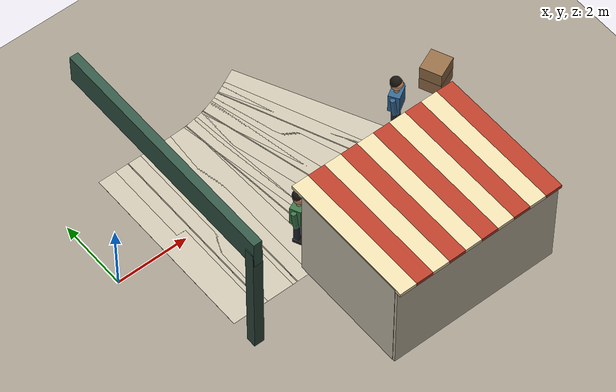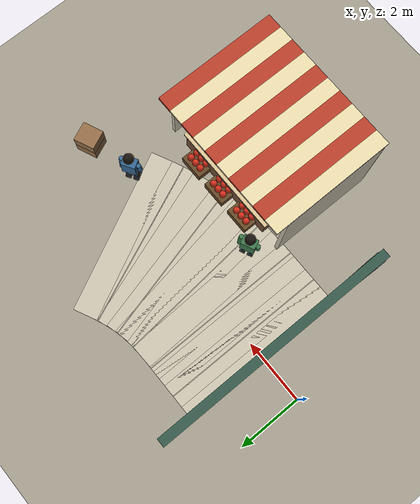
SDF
<sdf version="1.10">
 <world name="swan_town">
  <model name="ground_plane">
   <pose>-14 30 -0.025 0 0 0</pose>
   <static>true</static>
   <link name="link">
    <collision name="collision">
     <geometry><plane><normal>0 0 1</normal><size>100 100</size></plane></geometry>
    </collision>
    <visual name="visual">
     <geometry><plane><normal>0 0 1</normal><size>100 100</size></plane></geometry>
     <material><ambient>0.3 0.5 0.2 1</ambient><diffuse>0.3 0.5 0.2 1</diffuse></material>
    </visual>
   </link>
  </model>
  <model name="ground">
   <static>true</static>
   <pose>15 0 -0.1 0 0 0</pose>
   <link name="body">
    <collision name="box_collision"><geometry><box><size>46 24 0.2</size></box></geometry></collision>
    <visual name="box_visual">
     <geometry><box><size>46 24 0.2</size></box></geometry>
     <material><ambient>0.64 0.61 0.55 1</ambient><diffuse>0.64 0.61 0.55 1</diffuse></material>
    </visual>
   </link>
  </model>
  <model name="market_paving_7">
   <static>true</static>
   <pose>1.75 0 0.002 0 0 0</pose>
   <link name="body">
    <visual name="box_visual">
     <geometry><box><size>0.75 5.2 0.004</size></box></geometry>
     <material><ambient>0.79 0.76 0.68 1</ambient><diffuse>0.79 0.76 0.68 1</diffuse></material>
    </visual>
   </link>
  </model>
  <model name="market_paving_8">
   <static>true</static>
   <pose>2.25 0 0.002 0 0 0</pose>
   <link name="body">
    <visual name="box_visual">
     <geometry><box><size>0.75 5.2 0.004</size></box></geometry>
     <material><ambient>0.79 0.76 0.68 1</ambient><diffuse>0.79 0.76 0.68 1</diffuse></material>
    </visual>
   </link>
  </model>
  <model name="paving_joint_8">
   <static>true</static>
   <pose>2.25 0 0.0045 0 0 0</pose>
   <link name="body">
    <visual name="box_visual">
     <geometry><box><size>0.025 5.2 0.001</size></box></geometry>
     <material><ambient>0.67 0.64 0.57 1</ambient><diffuse>0.67 0.64 0.57 1</diffuse></material>
    </visual>
   </link>
  </model>
  <model name="market_paving_9">
   <static>true</static>
   <pose>2.75 0 0.002 0 0 0</pose>
   <link name="body">
    <visual name="box_visual">
     <geometry><box><size>0.75 5.2 0.004</size></box></geometry>
     <material><ambient>0.79 0.76 0.68 1</ambient><diffuse>0.79 0.76 0.68 1</diffuse></material>
    </visual>
   </link>
  </model>
  <model name="market_paving_10">
   <static>true</static>
   <pose>3.25 0.00031537 0.002 0 0 0.003781</pose>
   <link name="body">
    <visual name="box_visual">
     <geometry><box><size>0.75 5.2 0.004</size></box></geometry>
     <material><ambient>0.79 0.76 0.68 1</ambient><diffuse>0.79 0.76 0.68 1</diffuse></material>
    </visual>
   </link>
  </model>
  <model name="paving_joint_10">
   <static>true</static>
   <pose>3.25 0.00031537 0.0045 0 0 0.003781</pose>
   <link name="body">
    <visual name="box_visual">
     <geometry><box><size>0.025 5.2 0.001</size></box></geometry>
     <material><ambient>0.67 0.64 0.57 1</ambient><diffuse>0.67 0.64 0.57 1</diffuse></material>
    </visual>
   </link>
  </model>
  <model name="market_paving_11">
   <static>true</static>
   <pose>3.75 0.0084221 0.002 0 0 0.033398</pose>
   <link name="body">
    <visual name="box_visual">
     <geometry><box><size>0.75 5.2 0.004</size></box></geometry>
     <material><ambient>0.79 0.76 0.68 1</ambient><diffuse>0.79 0.76 0.68 1</diffuse></material>
    </visual>
   </link>
  </model>
  <model name="market_paving_12">
   <static>true</static>
   <pose>4.25 0.038143 0.002 0 0 0.089204</pose>
   <link name="body">
    <visual name="box_visual">
     <geometry><box><size>0.75 5.2 0.004</size></box></geometry>
     <material><ambient>0.79 0.76 0.68 1</ambient><diffuse>0.79 0.76 0.68 1</diffuse></material>
    </visual>
   </link>
  </model>
  <model name="paving_joint_12">
   <static>true</static>
   <pose>4.25 0.038143 0.0045 0 0 0.089204</pose>
   <link name="body">
    <visual name="box_visual">
     <geometry><box><size>0.025 5.2 0.001</size></box></geometry>
     <material><ambient>0.67 0.64 0.57 1</ambient><diffuse>0.67 0.64 0.57 1</diffuse></material>
    </visual>
   </link>
  </model>
  <model name="market_paving_13">
   <static>true</static>
   <pose>4.75 0.10125 0.002 0 0 0.16424</pose>
   <link name="body">
    <visual name="box_visual">
     <geometry><box><size>0.75 5.2 0.004</size></box></geometry>
     <material><ambient>0.79 0.76 0.68 1</ambient><diffuse>0.79 0.76 0.68 1</diffuse></material>
    </visual>
   </link>
  </model>
  <model name="market_paving_14">
   <static>true</static>
   <pose>5.25 0.20586 0.002 0 0 0.2486</pose>
   <link name="body">
    <visual name="box_visual">
     <geometry><box><size>0.75 5.2 0.004</size></box></geometry>
     <material><ambient>0.79 0.76 0.68 1</ambient><diffuse>0.79 0.76 0.68 1</diffuse></material>
    </visual>
   </link>
  </model>
  <model name="paving_joint_14">
   <static>true</static>
   <pose>5.25 0.20586 0.0045 0 0 0.2486</pose>
   <link name="body">
    <visual name="box_visual">
     <geometry><box><size>0.025 5.2 0.001</size></box></geometry>
     <material><ambient>0.67 0.64 0.57 1</ambient><diffuse>0.67 0.64 0.57 1</diffuse></material>
    </visual>
   </link>
  </model>
  <model name="market_paving_15">
   <static>true</static>
   <pose>5.75 0.35543 0.002 0 0 0.33122</pose>
   <link name="body">
    <visual name="box_visual">
     <geometry><box><size>0.75 5.2 0.004</size></box></geometry>
     <material><ambient>0.79 0.76 0.68 1</ambient><diffuse>0.79 0.76 0.68 1</diffuse></material>
    </visual>
   </link>
  </model>
  <model name="market_paving_16">
   <static>true</static>
   <pose>6.25 0.54833 0.002 0 0 0.40225</pose>
   <link name="body">
    <visual name="box_visual">
     <geometry><box><size>0.75 5.2 0.004</size></box></geometry>
     <material><ambient>0.79 0.76 0.68 1</ambient><diffuse>0.79 0.76 0.68 1</diffuse></material>
    </visual>
   </link>
  </model>
  <model name="paving_joint_16">
   <static>true</static>
   <pose>6.25 0.54833 0.0045 0 0 0.40225</pose>
   <link name="body">
    <visual name="box_visual">
     <geometry><box><size>0.025 5.2 0.001</size></box></geometry>
     <material><ambient>0.67 0.64 0.57 1</ambient><diffuse>0.67 0.64 0.57 1</diffuse></material>
    </visual>
   </link>
  </model>
  <model name="market_paving_17">
   <static>true</static>
   <pose>6.75 0.77782 0.002 0 0 0.45458</pose>
   <link name="body">
    <visual name="box_visual">
     <geometry><box><size>0.75 5.2 0.004</size></box></geometry>
     <material><ambient>0.79 0.76 0.68 1</ambient><diffuse>0.79 0.76 0.68 1</diffuse></material>
    </visual>
   </link>
  </model>
  <model name="entrance_post_-1">
   <static>true</static>
   <pose>1.5 -3.25 1.8 0 0 0</pose>
   <link name="body">
    <collision name="box_collision"><geometry><box><size>0.28 0.28 3.6</size></box></geometry></collision>
    <visual name="box_visual">
     <geometry><box><size>0.28 0.28 3.6</size></box></geometry>
     <material><ambient>0.2 0.29 0.25 1</ambient><diffuse>0.2 0.29 0.25 1</diffuse></material>
    </visual>
   </link>
  </model>
  <model name="entrance_header">
   <static>true</static>
   <pose>1.5 0 3.6 0 0 0</pose>
   <link name="body">
    <collision name="box_collision"><geometry><box><size>0.24 6.8 0.82</size></box></geometry></collision>
    <visual name="box_visual">
     <geometry><box><size>0.24 6.8 0.82</size></box></geometry>
     <material><ambient>0.2 0.34 0.28 1</ambient><diffuse>0.2 0.34 0.28 1</diffuse></material>
    </visual>
   </link>
  </model>
  <model name="stall_04">
   <static>true</static>
   <pose>6 -4.0032 0 0 0 0</pose>
   <link name="body">
    <collision name="rear_collision">
     <pose>0 -1.65 1.4 0 0 0</pose>
     <geometry><box><size>4.8 0.15 2.8</size></box></geometry>
    </collision>
    <visual name="rear_visual">
     <pose>0 -1.65 1.4 0 0 0</pose>
     <geometry><box><size>4.8 0.15 2.8</size></box></geometry>
     <material><ambient>0.78 0.74 0.65 1</ambient><diffuse>0.78 0.74 0.65 1</diffuse></material>
    </visual>
    <collision name="side_-2.35_collision">
     <pose>-2.35 0 1.4 0 0 0</pose>
     <geometry><box><size>0.12 3.3 2.8</size></box></geometry>
    </collision>
    <visual name="side_-2.35_visual">
     <pose>-2.35 0 1.4 0 0 0</pose>
     <geometry><box><size>0.12 3.3 2.8</size></box></geometry>
     <material><ambient>0.81 0.77 0.69 1</ambient><diffuse>0.81 0.77 0.69 1</diffuse></material>
    </visual>
    <collision name="side_2.35_collision">
     <pose>2.35 0 1.4 0 0 0</pose>
     <geometry><box><size>0.12 3.3 2.8</size></box></geometry>
    </collision>
    <visual name="side_2.35_visual">
     <pose>2.35 0 1.4 0 0 0</pose>
     <geometry><box><size>0.12 3.3 2.8</size></box></geometry>
     <material><ambient>0.81 0.77 0.69 1</ambient><diffuse>0.81 0.77 0.69 1</diffuse></material>
    </visual>
    <collision name="counter_collision">
     <pose>0 1.22 0.4 0 0 0</pose>
     <geometry><box><size>3.5 0.85 0.8</size></box></geometry>
    </collision>
    <visual name="counter_visual">
     <pose>0 1.22 0.4 0 0 0</pose>
     <geometry><box><size>3.5 0.85 0.8</size></box></geometry>
     <material><ambient>0.47 0.32 0.21 1</ambient><diffuse>0.47 0.32 0.21 1</diffuse></material>
    </visual>
    <collision name="counter_top_collision">
     <pose>0 1.22 0.83 0 0 0</pose>
     <geometry><box><size>3.6 0.95 0.06</size></box></geometry>
    </collision>
    <visual name="counter_top_visual">
     <pose>0 1.22 0.83 0 0 0</pose>
     <geometry><box><size>3.6 0.95 0.06</size></box></geometry>
     <material><ambient>0.86 0.77 0.59 1</ambient><diffuse>0.86 0.77 0.59 1</diffuse></material>
    </visual>
    <collision name="awning_0_collision">
     <pose>-2.16 0.1 2.78 0 0 0</pose>
     <geometry><box><size>0.48 3.85 0.1</size></box></geometry>
    </collision>
    <visual name="awning_0_visual">
     <pose>-2.16 0.1 2.78 0 0 0</pose>
     <geometry><box><size>0.48 3.85 0.1</size></box></geometry>
     <material><ambient>0.92 0.86 0.68 1</ambient><diffuse>0.92 0.86 0.68 1</diffuse></material>
    </visual>
    <collision name="awning_1_collision">
     <pose>-1.68 0.1 2.78 0 0 0</pose>
     <geometry><box><size>0.48 3.85 0.1</size></box></geometry>
    </collision>
    <visual name="awning_1_visual">
     <pose>-1.68 0.1 2.78 0 0 0</pose>
     <geometry><box><size>0.48 3.85 0.1</size></box></geometry>
     <material><ambient>0.72 0.24 0.16 1</ambient><diffuse>0.72 0.24 0.16 1</diffuse></material>
    </visual>
    <collision name="awning_2_collision">
     <pose>-1.2 0.1 2.78 0 0 0</pose>
     <geometry><box><size>0.48 3.85 0.1</size></box></geometry>
    </collision>
    <visual name="awning_2_visual">
     <pose>-1.2 0.1 2.78 0 0 0</pose>
     <geometry><box><size>0.48 3.85 0.1</size></box></geometry>
     <material><ambient>0.92 0.86 0.68 1</ambient><diffuse>0.92 0.86 0.68 1</diffuse></material>
    </visual>
    <collision name="awning_3_collision">
     <pose>-0.72 0.1 2.78 0 0 0</pose>
     <geometry><box><size>0.48 3.85 0.1</size></box></geometry>
    </collision>
    <visual name="awning_3_visual">
     <pose>-0.72 0.1 2.78 0 0 0</pose>
     <geometry><box><size>0.48 3.85 0.1</size></box></geometry>
     <material><ambient>0.72 0.24 0.16 1</ambient><diffuse>0.72 0.24 0.16 1</diffuse></material>
    </visual>
    <collision name="awning_4_collision">
     <pose>-0.24 0.1 2.78 0 0 0</pose>
     <geometry><box><size>0.48 3.85 0.1</size></box></geometry>
    </collision>
    <visual name="awning_4_visual">
     <pose>-0.24 0.1 2.78 0 0 0</pose>
     <geometry><box><size>0.48 3.85 0.1</size></box></geometry>
     <material><ambient>0.92 0.86 0.68 1</ambient><diffuse>0.92 0.86 0.68 1</diffuse></material>
    </visual>
    <collision name="awning_5_collision">
     <pose>0.24 0.1 2.78 0 0 0</pose>
     <geometry><box><size>0.48 3.85 0.1</size></box></geometry>
    </collision>
    <visual name="awning_5_visual">
     <pose>0.24 0.1 2.78 0 0 0</pose>
     <geometry><box><size>0.48 3.85 0.1</size></box></geometry>
     <material><ambient>0.72 0.24 0.16 1</ambient><diffuse>0.72 0.24 0.16 1</diffuse></material>
    </visual>
    <collision name="awning_6_collision">
     <pose>0.72 0.1 2.78 0 0 0</pose>
     <geometry><box><size>0.48 3.85 0.1</size></box></geometry>
    </collision>
    <visual name="awning_6_visual">
     <pose>0.72 0.1 2.78 0 0 0</pose>
     <geometry><box><size>0.48 3.85 0.1</size></box></geometry>
     <material><ambient>0.92 0.86 0.68 1</ambient><diffuse>0.92 0.86 0.68 1</diffuse></material>
    </visual>
    <collision name="awning_7_collision">
     <pose>1.2 0.1 2.78 0 0 0</pose>
     <geometry><box><size>0.48 3.85 0.1</size></box></geometry>
    </collision>
    <visual name="awning_7_visual">
     <pose>1.2 0.1 2.78 0 0 0</pose>
     <geometry><box><size>0.48 3.85 0.1</size></box></geometry>
     <material><ambient>0.72 0.24 0.16 1</ambient><diffuse>0.72 0.24 0.16 1</diffuse></material>
    </visual>
    <collision name="awning_8_collision">
     <pose>1.68 0.1 2.78 0 0 0</pose>
     <geometry><box><size>0.48 3.85 0.1</size></box></geometry>
    </collision>
    <visual name="awning_8_visual">
     <pose>1.68 0.1 2.78 0 0 0</pose>
     <geometry><box><size>0.48 3.85 0.1</size></box></geometry>
     <material><ambient>0.92 0.86 0.68 1</ambient><diffuse>0.92 0.86 0.68 1</diffuse></material>
    </visual>
    <collision name="awning_9_collision">
     <pose>2.16 0.1 2.78 0 0 0</pose>
     <geometry><box><size>0.48 3.85 0.1</size></box></geometry>
    </collision>
    <visual name="awning_9_visual">
     <pose>2.16 0.1 2.78 0 0 0</pose>
     <geometry><box><size>0.48 3.85 0.1</size></box></geometry>
     <material><ambient>0.72 0.24 0.16 1</ambient><diffuse>0.72 0.24 0.16 1</diffuse></material>
    </visual>
    <collision name="crate_-1_collision">
     <pose>-1.04 1.77 0.15 0 0 0</pose>
     <geometry><box><size>0.78 0.6 0.3</size></box></geometry>
    </collision>
    <visual name="crate_-1_visual">
     <pose>-1.04 1.77 0.15 0 0 0</pose>
     <geometry><box><size>0.78 0.6 0.3</size></box></geometry>
     <material><ambient>0.4 0.28 0.15 1</ambient><diffuse>0.4 0.28 0.15 1</diffuse></material>
    </visual>
    <visual name="produce_-1_0_visual">
     <pose>-1.25 1.66 0.39 0 0 0</pose>
     <geometry><sphere><radius>0.105</radius></sphere></geometry>
     <material><ambient>0.84 0.18 0.11 1</ambient><diffuse>0.84 0.18 0.11 1</diffuse></material>
    </visual>
    <visual name="produce_-1_1_visual">
     <pose>-1.04 1.66 0.39 0 0 0</pose>
     <geometry><sphere><radius>0.105</radius></sphere></geometry>
     <material><ambient>0.84 0.18 0.11 1</ambient><diffuse>0.84 0.18 0.11 1</diffuse></material>
    </visual>
    <visual name="produce_-1_2_visual">
     <pose>-0.83 1.66 0.39 0 0 0</pose>
     <geometry><sphere><radius>0.105</radius></sphere></geometry>
     <material><ambient>0.84 0.18 0.11 1</ambient><diffuse>0.84 0.18 0.11 1</diffuse></material>
    </visual>
    <visual name="produce_-1_3_visual">
     <pose>-1.25 1.88 0.39 0 0 0</pose>
     <geometry><sphere><radius>0.105</radius></sphere></geometry>
     <material><ambient>0.84 0.18 0.11 1</ambient><diffuse>0.84 0.18 0.11 1</diffuse></material>
    </visual>
    <visual name="produce_-1_4_visual">
     <pose>-1.04 1.88 0.39 0 0 0</pose>
     <geometry><sphere><radius>0.105</radius></sphere></geometry>
     <material><ambient>0.84 0.18 0.11 1</ambient><diffuse>0.84 0.18 0.11 1</diffuse></material>
    </visual>
    <visual name="produce_-1_5_visual">
     <pose>-0.83 1.88 0.39 0 0 0</pose>
     <geometry><sphere><radius>0.105</radius></sphere></geometry>
     <material><ambient>0.84 0.18 0.11 1</ambient><diffuse>0.84 0.18 0.11 1</diffuse></material>
    </visual>
    <collision name="crate_0_collision">
     <pose>0 1.77 0.15 0 0 0</pose>
     <geometry><box><size>0.78 0.6 0.3</size></box></geometry>
    </collision>
    <visual name="crate_0_visual">
     <pose>0 1.77 0.15 0 0 0</pose>
     <geometry><box><size>0.78 0.6 0.3</size></box></geometry>
     <material><ambient>0.4 0.28 0.15 1</ambient><diffuse>0.4 0.28 0.15 1</diffuse></material>
    </visual>
    <visual name="produce_0_0_visual">
     <pose>-0.21 1.66 0.39 0 0 0</pose>
     <geometry><sphere><radius>0.105</radius></sphere></geometry>
     <material><ambient>0.84 0.18 0.11 1</ambient><diffuse>0.84 0.18 0.11 1</diffuse></material>
    </visual>
    <visual name="produce_0_1_visual">
     <pose>0 1.66 0.39 0 0 0</pose>
     <geometry><sphere><radius>0.105</radius></sphere></geometry>
     <material><ambient>0.84 0.18 0.11 1</ambient><diffuse>0.84 0.18 0.11 1</diffuse></material>
    </visual>
    <visual name="produce_0_2_visual">
     <pose>0.21 1.66 0.39 0 0 0</pose>
     <geometry><sphere><radius>0.105</radius></sphere></geometry>
     <material><ambient>0.84 0.18 0.11 1</ambient><diffuse>0.84 0.18 0.11 1</diffuse></material>
    </visual>
    <visual name="produce_0_3_visual">
     <pose>-0.21 1.88 0.39 0 0 0</pose>
     <geometry><sphere><radius>0.105</radius></sphere></geometry>
     <material><ambient>0.84 0.18 0.11 1</ambient><diffuse>0.84 0.18 0.11 1</diffuse></material>
    </visual>
    <visual name="produce_0_4_visual">
     <pose>0 1.88 0.39 0 0 0</pose>
     <geometry><sphere><radius>0.105</radius></sphere></geometry>
     <material><ambient>0.84 0.18 0.11 1</ambient><diffuse>0.84 0.18 0.11 1</diffuse></material>
    </visual>
    <visual name="produce_0_5_visual">
     <pose>0.21 1.88 0.39 0 0 0</pose>
     <geometry><sphere><radius>0.105</radius></sphere></geometry>
     <material><ambient>0.84 0.18 0.11 1</ambient><diffuse>0.84 0.18 0.11 1</diffuse></material>
    </visual>
    <collision name="crate_1_collision">
     <pose>1.04 1.77 0.15 0 0 0</pose>
     <geometry><box><size>0.78 0.6 0.3</size></box></geometry>
    </collision>
    <visual name="crate_1_visual">
     <pose>1.04 1.77 0.15 0 0 0</pose>
     <geometry><box><size>0.78 0.6 0.3</size></box></geometry>
     <material><ambient>0.4 0.28 0.15 1</ambient><diffuse>0.4 0.28 0.15 1</diffuse></material>
    </visual>
    <visual name="produce_1_0_visual">
     <pose>0.83 1.66 0.39 0 0 0</pose>
     <geometry><sphere><radius>0.105</radius></sphere></geometry>
     <material><ambient>0.84 0.18 0.11 1</ambient><diffuse>0.84 0.18 0.11 1</diffuse></material>
    </visual>
    <visual name="produce_1_1_visual">
     <pose>1.04 1.66 0.39 0 0 0</pose>
     <geometry><sphere><radius>0.105</radius></sphere></geometry>
     <material><ambient>0.84 0.18 0.11 1</ambient><diffuse>0.84 0.18 0.11 1</diffuse></material>
    </visual>
    <visual name="produce_1_2_visual">
     <pose>1.25 1.66 0.39 0 0 0</pose>
     <geometry><sphere><radius>0.105</radius></sphere></geometry>
     <material><ambient>0.84 0.18 0.11 1</ambient><diffuse>0.84 0.18 0.11 1</diffuse></material>
    </visual>
    <visual name="produce_1_3_visual">
     <pose>0.83 1.88 0.39 0 0 0</pose>
     <geometry><sphere><radius>0.105</radius></sphere></geometry>
     <material><ambient>0.84 0.18 0.11 1</ambient><diffuse>0.84 0.18 0.11 1</diffuse></material>
    </visual>
    <visual name="produce_1_4_visual">
     <pose>1.04 1.88 0.39 0 0 0</pose>
     <geometry><sphere><radius>0.105</radius></sphere></geometry>
     <material><ambient>0.84 0.18 0.11 1</ambient><diffuse>0.84 0.18 0.11 1</diffuse></material>
    </visual>
    <visual name="produce_1_5_visual">
     <pose>1.25 1.88 0.39 0 0 0</pose>
     <geometry><sphere><radius>0.105</radius></sphere></geometry>
     <material><ambient>0.84 0.18 0.11 1</ambient><diffuse>0.84 0.18 0.11 1</diffuse></material>
    </visual>
   </link>
  </model>
  <model name="signboard_4">
   <static>true</static>
   <pose>6 -2.2432 2.24 0 0 0</pose>
   <link name="body">
    <collision name="box_collision"><geometry><box><size>3.65 0.08 0.72</size></box></geometry></collision>
    <visual name="box_visual">
     <geometry><box><size>3.65 0.08 0.72</size></box></geometry>
     <material><ambient>0.72 0.24 0.16 1</ambient><diffuse>0.72 0.24 0.16 1</diffuse></material>
    </visual>
   </link>
  </model>
  <model name="sign_shop_4">
   <static>true</static>
   <pose>6 -2.1952 2.24 0 0 -3.14158530718</pose>
   <link name="body">
    <visual name="top_visual">
     <pose>0 -0.003 0.32062 0 0 0</pose>
     <geometry><box><size>3.5136 0.003 0.0108</size></box></geometry>
     <material><ambient>1 0.961 0.875 1</ambient><diffuse>1 0.961 0.875 1</diffuse></material>
    </visual>
    <visual name="bottom_visual">
     <pose>0 -0.003 -0.32062 0 0 0</pose>
     <geometry><box><size>3.5136 0.003 0.0108</size></box></geometry>
     <material><ambient>1 0.961 0.875 1</ambient><diffuse>1 0.961 0.875 1</diffuse></material>
    </visual>
    <visual name="left_visual">
     <pose>-1.7568 -0.003 0 0 0 0</pose>
     <geometry><box><size>0.0108 0.003 0.64125</size></box></geometry>
     <material><ambient>1 0.961 0.875 1</ambient><diffuse>1 0.961 0.875 1</diffuse></material>
    </visual>
    <visual name="right_visual">
     <pose>1.7568 -0.003 0 0 0 0</pose>
     <geometry><box><size>0.0108 0.003 0.64125</size></box></geometry>
     <material><ambient>1 0.961 0.875 1</ambient><diffuse>1 0.961 0.875 1</diffuse></material>
    </visual>
    <visual name="ink_0_visual">
     <pose>0.028125 -0.003 0.15938 0 0 0</pose>
     <geometry><box><size>0.01875 0.003 0.01875</size></box></geometry>
     <material><ambient>1 0.961 0.875 1</ambient><diffuse>1 0.961 0.875 1</diffuse></material>
    </visual>
    <visual name="ink_1_visual">
     <pose>-0.09375 -0.003 0.15 0 0 0</pose>
     <geometry><box><size>0.075 0.003 0.0375</size></box></geometry>
     <material><ambient>1 0.961 0.875 1</ambient><diffuse>1 0.961 0.875 1</diffuse></material>
    </visual>
    <visual name="ink_2_visual">
     <pose>0.0375 -0.003 0.14062 0 0 0</pose>
     <geometry><box><size>0.0375 0.003 0.01875</size></box></geometry>
     <material><ambient>1 0.961 0.875 1</ambient><diffuse>1 0.961 0.875 1</diffuse></material>
    </visual>
    <visual name="ink_3_visual">
     <pose>0.225 -0.003 0.14062 0 0 0</pose>
     <geometry><box><size>0.075 0.003 0.01875</size></box></geometry>
     <material><ambient>1 0.961 0.875 1</ambient><diffuse>1 0.961 0.875 1</diffuse></material>
    </visual>
    <visual name="ink_4_visual">
     <pose>0.31875 -0.003 0.14062 0 0 0</pose>
     <geometry><box><size>0.075 0.003 0.01875</size></box></geometry>
     <material><ambient>1 0.961 0.875 1</ambient><diffuse>1 0.961 0.875 1</diffuse></material>
    </visual>
    <visual name="ink_5_visual">
     <pose>0.54375 -0.003 0.14062 0 0 0</pose>
     <geometry><box><size>0.15 0.003 0.01875</size></box></geometry>
     <material><ambient>1 0.961 0.875 1</ambient><diffuse>1 0.961 0.875 1</diffuse></material>
    </visual>
    <visual name="ink_6_visual">
     <pose>-0.58125 -0.003 0.13125 0 0 0</pose>
     <geometry><box><size>0.1875 0.003 0.0375</size></box></geometry>
     <material><ambient>1 0.961 0.875 1</ambient><diffuse>1 0.961 0.875 1</diffuse></material>
    </visual>
    <visual name="ink_7_visual">
     <pose>-0.30938 -0.003 0.13125 0 0 0</pose>
     <geometry><box><size>0.01875 0.003 0.0375</size></box></geometry>
     <material><ambient>1 0.961 0.875 1</ambient><diffuse>1 0.961 0.875 1</diffuse></material>
    </visual>
    <visual name="ink_8_visual">
     <pose>0.39375 -0.003 0.14062 0 0 0</pose>
     <geometry><box><size>0.0375 0.003 0.05625</size></box></geometry>
     <material><ambient>1 0.961 0.875 1</ambient><diffuse>1 0.961 0.875 1</diffuse></material>
    </visual>
    <visual name="ink_9_visual">
     <pose>-0.084375 -0.003 0.10313 0 0 0</pose>
     <geometry><box><size>0.16875 0.003 0.01875</size></box></geometry>
     <material><ambient>1 0.961 0.875 1</ambient><diffuse>1 0.961 0.875 1</diffuse></material>
    </visual>
    <visual name="ink_10_visual">
     <pose>0.028125 -0.003 0.1125 0 0 0</pose>
     <geometry><box><size>0.01875 0.003 0.0375</size></box></geometry>
     <material><ambient>1 0.961 0.875 1</ambient><diffuse>1 0.961 0.875 1</diffuse></material>
    </visual>
    <visual name="ink_11_visual">
     <pose>0.38438 -0.003 0.10313 0 0 0</pose>
     <geometry><box><size>0.05625 0.003 0.01875</size></box></geometry>
     <material><ambient>1 0.961 0.875 1</ambient><diffuse>1 0.961 0.875 1</diffuse></material>
    </visual>
    <visual name="ink_12_visual">
     <pose>0.53438 -0.003 0.1125 0 0 0</pose>
     <geometry><box><size>0.01875 0.003 0.0375</size></box></geometry>
     <material><ambient>1 0.961 0.875 1</ambient><diffuse>1 0.961 0.875 1</diffuse></material>
    </visual>
    <visual name="ink_13_visual">
     <pose>-0.30938 -0.003 0.09375 0 0 0</pose>
     <geometry><box><size>0.05625 0.003 0.0375</size></box></geometry>
     <material><ambient>1 0.961 0.875 1</ambient><diffuse>1 0.961 0.875 1</diffuse></material>
    </visual>
    <visual name="ink_14_visual">
     <pose>-0.084375 -0.003 0.084375 0 0 0</pose>
     <geometry><box><size>0.01875 0.003 0.01875</size></box></geometry>
     <material><ambient>1 0.961 0.875 1</ambient><diffuse>1 0.961 0.875 1</diffuse></material>
    </visual>
    <visual name="ink_15_visual">
     <pose>0.0375 -0.003 0.084375 0 0 0</pose>
     <geometry><box><size>0.0375 0.003 0.01875</size></box></geometry>
     <material><ambient>1 0.961 0.875 1</ambient><diffuse>1 0.961 0.875 1</diffuse></material>
    </visual>
    <visual name="ink_16_visual">
     <pose>0.375 -0.003 0.084375 0 0 0</pose>
     <geometry><box><size>0.075 0.003 0.01875</size></box></geometry>
     <material><ambient>1 0.961 0.875 1</ambient><diffuse>1 0.961 0.875 1</diffuse></material>
    </visual>
    <visual name="ink_17_visual">
     <pose>0.53438 -0.003 0.084375 0 0 0</pose>
     <geometry><box><size>0.05625 0.003 0.01875</size></box></geometry>
     <material><ambient>1 0.961 0.875 1</ambient><diffuse>1 0.961 0.875 1</diffuse></material>
    </visual>
    <visual name="ink_18_visual">
     <pose>-0.49687 -0.003 0.084375 0 0 0</pose>
     <geometry><box><size>0.01875 0.003 0.05625</size></box></geometry>
     <material><ambient>1 0.961 0.875 1</ambient><diffuse>1 0.961 0.875 1</diffuse></material>
    </visual>
    <visual name="ink_19_visual">
     <pose>-0.3375 -0.003 0.065625 0 0 0</pose>
     <geometry><box><size>0.0375 0.003 0.01875</size></box></geometry>
     <material><ambient>1 0.961 0.875 1</ambient><diffuse>1 0.961 0.875 1</diffuse></material>
    </visual>
    <visual name="ink_20_visual">
     <pose>-0.28125 -0.003 0.065625 0 0 0</pose>
     <geometry><box><size>0.0375 0.003 0.01875</size></box></geometry>
     <material><ambient>1 0.961 0.875 1</ambient><diffuse>1 0.961 0.875 1</diffuse></material>
    </visual>
    <visual name="ink_21_visual">
     <pose>-0.084375 -0.003 0.065625 0 0 0</pose>
     <geometry><box><size>0.09375 0.003 0.01875</size></box></geometry>
     <material><ambient>1 0.961 0.875 1</ambient><diffuse>1 0.961 0.875 1</diffuse></material>
    </visual>
    <visual name="ink_22_visual">
     <pose>0.05625 -0.003 0.065625 0 0 0</pose>
     <geometry><box><size>0.075 0.003 0.01875</size></box></geometry>
     <material><ambient>1 0.961 0.875 1</ambient><diffuse>1 0.961 0.875 1</diffuse></material>
    </visual>
    <visual name="ink_23_visual">
     <pose>0.20625 -0.003 0.09375 0 0 0</pose>
     <geometry><box><size>0.0375 0.003 0.075</size></box></geometry>
     <material><ambient>1 0.961 0.875 1</ambient><diffuse>1 0.961 0.875 1</diffuse></material>
    </visual>
    <visual name="ink_24_visual">
     <pose>0.29062 -0.003 0.09375 0 0 0</pose>
     <geometry><box><size>0.01875 0.003 0.075</size></box></geometry>
     <material><ambient>1 0.961 0.875 1</ambient><diffuse>1 0.961 0.875 1</diffuse></material>
    </visual>
    <visual name="ink_25_visual">
     <pose>0.50625 -0.003 0.065625 0 0 0</pose>
     <geometry><box><size>0.0375 0.003 0.01875</size></box></geometry>
     <material><ambient>1 0.961 0.875 1</ambient><diffuse>1 0.961 0.875 1</diffuse></material>
    </visual>
    <visual name="ink_26_visual">
     <pose>0.5625 -0.003 0.065625 0 0 0</pose>
     <geometry><box><size>0.0375 0.003 0.01875</size></box></geometry>
     <material><ambient>1 0.961 0.875 1</ambient><diffuse>1 0.961 0.875 1</diffuse></material>
    </visual>
    <visual name="ink_27_visual">
     <pose>-0.36563 -0.003 0.046875 0 0 0</pose>
     <geometry><box><size>0.05625 0.003 0.01875</size></box></geometry>
     <material><ambient>1 0.961 0.875 1</ambient><diffuse>1 0.961 0.875 1</diffuse></material>
    </visual>
    <visual name="ink_28_visual">
     <pose>-0.25312 -0.003 0.046875 0 0 0</pose>
     <geometry><box><size>0.05625 0.003 0.01875</size></box></geometry>
     <material><ambient>1 0.961 0.875 1</ambient><diffuse>1 0.961 0.875 1</diffuse></material>
    </visual>
    <visual name="ink_29_visual">
     <pose>-0.13125 -0.003 0.046875 0 0 0</pose>
     <geometry><box><size>0.0375 0.003 0.01875</size></box></geometry>
     <material><ambient>1 0.961 0.875 1</ambient><diffuse>1 0.961 0.875 1</diffuse></material>
    </visual>
    <visual name="ink_30_visual">
     <pose>0.0375 -0.003 0.046875 0 0 0</pose>
     <geometry><box><size>0.0375 0.003 0.01875</size></box></geometry>
     <material><ambient>1 0.961 0.875 1</ambient><diffuse>1 0.961 0.875 1</diffuse></material>
    </visual>
    <visual name="ink_31_visual">
     <pose>0.27188 -0.003 0.046875 0 0 0</pose>
     <geometry><box><size>0.16875 0.003 0.01875</size></box></geometry>
     <material><ambient>1 0.961 0.875 1</ambient><diffuse>1 0.961 0.875 1</diffuse></material>
    </visual>
    <visual name="ink_32_visual">
     <pose>0.4875 -0.003 0.046875 0 0 0</pose>
     <geometry><box><size>0.0375 0.003 0.01875</size></box></geometry>
     <material><ambient>1 0.961 0.875 1</ambient><diffuse>1 0.961 0.875 1</diffuse></material>
    </visual>
    <visual name="ink_33_visual">
     <pose>0.58125 -0.003 0.046875 0 0 0</pose>
     <geometry><box><size>0.0375 0.003 0.01875</size></box></geometry>
     <material><ambient>1 0.961 0.875 1</ambient><diffuse>1 0.961 0.875 1</diffuse></material>
    </visual>
    <visual name="ink_34_visual">
     <pose>0.65625 -0.003 0.10313 0 0 0</pose>
     <geometry><box><size>0.0375 0.003 0.13125</size></box></geometry>
     <material><ambient>1 0.961 0.875 1</ambient><diffuse>1 0.961 0.875 1</diffuse></material>
    </visual>
    <visual name="ink_35_visual">
     <pose>-0.39375 -0.003 0.028125 0 0 0</pose>
     <geometry><box><size>0.0375 0.003 0.01875</size></box></geometry>
     <material><ambient>1 0.961 0.875 1</ambient><diffuse>1 0.961 0.875 1</diffuse></material>
    </visual>
    <visual name="ink_36_visual">
     <pose>-0.225 -0.003 0.028125 0 0 0</pose>
     <geometry><box><size>0.0375 0.003 0.01875</size></box></geometry>
     <material><ambient>1 0.961 0.875 1</ambient><diffuse>1 0.961 0.875 1</diffuse></material>
    </visual>
    <visual name="ink_37_visual">
     <pose>-0.14062 -0.003 0.028125 0 0 0</pose>
     <geometry><box><size>0.01875 0.003 0.01875</size></box></geometry>
     <material><ambient>1 0.961 0.875 1</ambient><diffuse>1 0.961 0.875 1</diffuse></material>
    </visual>
    <visual name="ink_38_visual">
     <pose>-0.0375 -0.003 0.0375 0 0 0</pose>
     <geometry><box><size>0.0375 0.003 0.0375</size></box></geometry>
     <material><ambient>1 0.961 0.875 1</ambient><diffuse>1 0.961 0.875 1</diffuse></material>
    </visual>
    <visual name="ink_39_visual">
     <pose>0.225 -0.003 0.028125 0 0 0</pose>
     <geometry><box><size>0.075 0.003 0.01875</size></box></geometry>
     <material><ambient>1 0.961 0.875 1</ambient><diffuse>1 0.961 0.875 1</diffuse></material>
    </visual>
    <visual name="ink_40_visual">
     <pose>0.31875 -0.003 0.028125 0 0 0</pose>
     <geometry><box><size>0.075 0.003 0.01875</size></box></geometry>
     <material><ambient>1 0.961 0.875 1</ambient><diffuse>1 0.961 0.875 1</diffuse></material>
    </visual>
    <visual name="ink_41_visual">
     <pose>0.39375 -0.003 0.046875 0 0 0</pose>
     <geometry><box><size>0.0375 0.003 0.05625</size></box></geometry>
     <material><ambient>1 0.961 0.875 1</ambient><diffuse>1 0.961 0.875 1</diffuse></material>
    </visual>
    <visual name="ink_42_visual">
     <pose>0.46875 -0.003 0.028125 0 0 0</pose>
     <geometry><box><size>0.0375 0.003 0.01875</size></box></geometry>
     <material><ambient>1 0.961 0.875 1</ambient><diffuse>1 0.961 0.875 1</diffuse></material>
    </visual>
    <visual name="ink_43_visual">
     <pose>0.59063 -0.003 0.028125 0 0 0</pose>
     <geometry><box><size>0.01875 0.003 0.01875</size></box></geometry>
     <material><ambient>1 0.961 0.875 1</ambient><diffuse>1 0.961 0.875 1</diffuse></material>
    </visual>
    <visual name="ink_44_visual">
     <pose>-0.50625 -0.003 0.028125 0 0 0</pose>
     <geometry><box><size>0.0375 0.003 0.05625</size></box></geometry>
     <material><ambient>1 0.961 0.875 1</ambient><diffuse>1 0.961 0.875 1</diffuse></material>
    </visual>
    <visual name="ink_45_visual">
     <pose>-0.09375 -0.003 0.009375 0 0 0</pose>
     <geometry><box><size>0.1125 0.003 0.01875</size></box></geometry>
     <material><ambient>1 0.961 0.875 1</ambient><diffuse>1 0.961 0.875 1</diffuse></material>
    </visual>
    <visual name="ink_46_visual">
     <pose>0.028125 -0.003 0.01875 0 0 0</pose>
     <geometry><box><size>0.01875 0.003 0.0375</size></box></geometry>
     <material><ambient>1 0.961 0.875 1</ambient><diffuse>1 0.961 0.875 1</diffuse></material>
    </visual>
    <visual name="ink_47_visual">
     <pose>0.40312 -0.003 0.009375 0 0 0</pose>
     <geometry><box><size>0.01875 0.003 0.01875</size></box></geometry>
     <material><ambient>1 0.961 0.875 1</ambient><diffuse>1 0.961 0.875 1</diffuse></material>
    </visual>
    <visual name="ink_48_visual">
     <pose>0.66563 -0.003 0.01875 0 0 0</pose>
     <geometry><box><size>0.01875 0.003 0.0375</size></box></geometry>
     <material><ambient>1 0.961 0.875 1</ambient><diffuse>1 0.961 0.875 1</diffuse></material>
    </visual>
    <visual name="ink_49_visual">
     <pose>-0.51563 -0.003 -0.009375 0 0 0</pose>
     <geometry><box><size>0.01875 0.003 0.01875</size></box></geometry>
     <material><ambient>1 0.961 0.875 1</ambient><diffuse>1 0.961 0.875 1</diffuse></material>
    </visual>
    <visual name="ink_50_visual">
     <pose>-0.084375 -0.003 -0.009375 0 0 0</pose>
     <geometry><box><size>0.05625 0.003 0.01875</size></box></geometry>
     <material><ambient>1 0.961 0.875 1</ambient><diffuse>1 0.961 0.875 1</diffuse></material>
    </visual>
    <visual name="ink_51_visual">
     <pose>0.0375 -0.003 -0.009375 0 0 0</pose>
     <geometry><box><size>0.0375 0.003 0.01875</size></box></geometry>
     <material><ambient>1 0.961 0.875 1</ambient><diffuse>1 0.961 0.875 1</diffuse></material>
    </visual>
    <visual name="ink_52_visual">
     <pose>0.50625 -0.003 -0.009375 0 0 0</pose>
     <geometry><box><size>0.0375 0.003 0.01875</size></box></geometry>
     <material><ambient>1 0.961 0.875 1</ambient><diffuse>1 0.961 0.875 1</diffuse></material>
    </visual>
    <visual name="ink_53_visual">
     <pose>0.65625 -0.003 -0.009375 0 0 0</pose>
     <geometry><box><size>0.0375 0.003 0.01875</size></box></geometry>
     <material><ambient>1 0.961 0.875 1</ambient><diffuse>1 0.961 0.875 1</diffuse></material>
    </visual>
    <visual name="ink_54_visual">
     <pose>-0.59063 -0.003 0.009375 0 0 0</pose>
     <geometry><box><size>0.01875 0.003 0.09375</size></box></geometry>
     <material><ambient>1 0.961 0.875 1</ambient><diffuse>1 0.961 0.875 1</diffuse></material>
    </visual>
    <visual name="ink_55_visual">
     <pose>-0.30938 -0.003 -0.009375 0 0 0</pose>
     <geometry><box><size>0.01875 0.003 0.05625</size></box></geometry>
     <material><ambient>1 0.961 0.875 1</ambient><diffuse>1 0.961 0.875 1</diffuse></material>
    </visual>
    <visual name="ink_56_visual">
     <pose>-0.12188 -0.003 -0.028125 0 0 0</pose>
     <geometry><box><size>0.01875 0.003 0.01875</size></box></geometry>
     <material><ambient>1 0.961 0.875 1</ambient><diffuse>1 0.961 0.875 1</diffuse></material>
    </visual>
    <visual name="ink_57_visual">
     <pose>0.028125 -0.003 -0.028125 0 0 0</pose>
     <geometry><box><size>0.01875 0.003 0.01875</size></box></geometry>
     <material><ambient>1 0.961 0.875 1</ambient><diffuse>1 0.961 0.875 1</diffuse></material>
    </visual>
    <visual name="ink_58_visual">
     <pose>0.31875 -0.003 -0.01875 0 0 0</pose>
     <geometry><box><size>0.1875 0.003 0.0375</size></box></geometry>
     <material><ambient>1 0.961 0.875 1</ambient><diffuse>1 0.961 0.875 1</diffuse></material>
    </visual>
    <visual name="ink_59_visual">
     <pose>-0.57188 -0.003 -0.046875 0 0 0</pose>
     <geometry><box><size>0.24375 0.003 0.01875</size></box></geometry>
     <material><ambient>1 0.961 0.875 1</ambient><diffuse>1 0.961 0.875 1</diffuse></material>
    </visual>
    <visual name="ink_60_visual">
     <pose>0.58125 -0.003 -0.0375 0 0 0</pose>
     <geometry><box><size>0.1875 0.003 0.0375</size></box></geometry>
     <material><ambient>1 0.961 0.875 1</ambient><diffuse>1 0.961 0.875 1</diffuse></material>
    </visual>
    <visual name="ink_61_visual">
     <pose>-0.58125 -0.003 -0.065625 0 0 0</pose>
     <geometry><box><size>0.225 0.003 0.01875</size></box></geometry>
     <material><ambient>1 0.961 0.875 1</ambient><diffuse>1 0.961 0.875 1</diffuse></material>
    </visual>
    <visual name="ink_62_visual">
     <pose>-0.30938 -0.003 -0.05625 0 0 0</pose>
     <geometry><box><size>0.24375 0.003 0.0375</size></box></geometry>
     <material><ambient>1 0.961 0.875 1</ambient><diffuse>1 0.961 0.875 1</diffuse></material>
    </visual>
    <visual name="ink_63_visual">
     <pose>-0.1125 -0.003 -0.05625 0 0 0</pose>
     <geometry><box><size>0.0375 0.003 0.0375</size></box></geometry>
     <material><ambient>1 0.961 0.875 1</ambient><diffuse>1 0.961 0.875 1</diffuse></material>
    </visual>
    <visual name="ink_64_visual">
     <pose>0.50625 -0.003 -0.065625 0 0 0</pose>
     <geometry><box><size>0.0375 0.003 0.01875</size></box></geometry>
     <material><ambient>1 0.961 0.875 1</ambient><diffuse>1 0.961 0.875 1</diffuse></material>
    </visual>
    <visual name="ink_65_visual">
     <pose>0.65625 -0.003 -0.065625 0 0 0</pose>
     <geometry><box><size>0.0375 0.003 0.01875</size></box></geometry>
     <material><ambient>1 0.961 0.875 1</ambient><diffuse>1 0.961 0.875 1</diffuse></material>
    </visual>
    <visual name="ink_66_visual">
     <pose>-0.0375 -0.003 -0.084375 0 0 0</pose>
     <geometry><box><size>0.1875 0.003 0.01875</size></box></geometry>
     <material><ambient>1 0.961 0.875 1</ambient><diffuse>1 0.961 0.875 1</diffuse></material>
    </visual>
    <visual name="ink_67_visual">
     <pose>0.39375 -0.003 -0.065625 0 0 0</pose>
     <geometry><box><size>0.0375 0.003 0.05625</size></box></geometry>
     <material><ambient>1 0.961 0.875 1</ambient><diffuse>1 0.961 0.875 1</diffuse></material>
    </visual>
    <visual name="ink_68_visual">
     <pose>0.58125 -0.003 -0.084375 0 0 0</pose>
     <geometry><box><size>0.1875 0.003 0.01875</size></box></geometry>
     <material><ambient>1 0.961 0.875 1</ambient><diffuse>1 0.961 0.875 1</diffuse></material>
    </visual>
    <visual name="ink_69_visual">
     <pose>0.40312 -0.003 -0.10313 0 0 0</pose>
     <geometry><box><size>0.01875 0.003 0.01875</size></box></geometry>
     <material><ambient>1 0.961 0.875 1</ambient><diffuse>1 0.961 0.875 1</diffuse></material>
    </visual>
   </link>
  </model>
  <model name="stock_stack_0_0">
   <static>true</static>
   <pose>9.5456 -0.15392 0.2 0 0 0.41442</pose>
   <link name="body">
    <collision name="box_collision"><geometry><box><size>0.65 0.6 0.4</size></box></geometry></collision>
    <visual name="box_visual">
     <geometry><box><size>0.65 0.6 0.4</size></box></geometry>
     <material><ambient>0.58 0.43 0.28 1</ambient><diffuse>0.58 0.43 0.28 1</diffuse></material>
    </visual>
   </link>
  </model>
  <model name="stock_stack_0_1">
   <static>true</static>
   <pose>9.5456 -0.15392 0.6 0 0 0.41442</pose>
   <link name="body">
    <collision name="box_collision"><geometry><box><size>0.65 0.6 0.4</size></box></geometry></collision>
    <visual name="box_visual">
     <geometry><box><size>0.65 0.6 0.4</size></box></geometry>
     <material><ambient>0.58 0.43 0.28 1</ambient><diffuse>0.58 0.43 0.28 1</diffuse></material>
    </visual>
   </link>
  </model>
  <model name="crowd_01">
   <static>true</static>
   <pose>4.0963 -1.6274 0 0 0 -1.1416</pose>
   <link name="body">
    <collision name="leg_-1_collision">
     <pose>0 -0.12 0.4 0 0 0</pose>
     <geometry><cylinder><radius>0.085</radius><length>0.68</length></cylinder></geometry>
    </collision>
    <visual name="leg_-1_visual">
     <pose>0 -0.12 0.4 0 0 0</pose>
     <geometry><cylinder><radius>0.085</radius><length>0.68</length></cylinder></geometry>
     <material><ambient>0.12 0.15 0.18 1</ambient><diffuse>0.12 0.15 0.18 1</diffuse></material>
    </visual>
    <collision name="shoe_-1_collision">
     <pose>0.06 -0.12 0.055 0 0 0</pose>
     <geometry><box><size>0.28 0.17 0.11</size></box></geometry>
    </collision>
    <visual name="shoe_-1_visual">
     <pose>0.06 -0.12 0.055 0 0 0</pose>
     <geometry><box><size>0.28 0.17 0.11</size></box></geometry>
     <material><ambient>0.08 0.07 0.06 1</ambient><diffuse>0.08 0.07 0.06 1</diffuse></material>
    </visual>
    <collision name="arm_-1_collision">
     <pose>0.02 -0.27 1.02 0 -0.12 0</pose>
     <geometry><cylinder><radius>0.068</radius><length>0.48</length></cylinder></geometry>
    </collision>
    <visual name="arm_-1_visual">
     <pose>0.02 -0.27 1.02 0 -0.12 0</pose>
     <geometry><cylinder><radius>0.068</radius><length>0.48</length></cylinder></geometry>
     <material><ambient>0.23 0.46 0.29 1</ambient><diffuse>0.23 0.46 0.29 1</diffuse></material>
    </visual>
    <collision name="leg_1_collision">
     <pose>0 0.12 0.4 0 0 0</pose>
     <geometry><cylinder><radius>0.085</radius><length>0.68</length></cylinder></geometry>
    </collision>
    <visual name="leg_1_visual">
     <pose>0 0.12 0.4 0 0 0</pose>
     <geometry><cylinder><radius>0.085</radius><length>0.68</length></cylinder></geometry>
     <material><ambient>0.12 0.15 0.18 1</ambient><diffuse>0.12 0.15 0.18 1</diffuse></material>
    </visual>
    <collision name="shoe_1_collision">
     <pose>0.06 0.12 0.055 0 0 0</pose>
     <geometry><box><size>0.28 0.17 0.11</size></box></geometry>
    </collision>
    <visual name="shoe_1_visual">
     <pose>0.06 0.12 0.055 0 0 0</pose>
     <geometry><box><size>0.28 0.17 0.11</size></box></geometry>
     <material><ambient>0.08 0.07 0.06 1</ambient><diffuse>0.08 0.07 0.06 1</diffuse></material>
    </visual>
    <collision name="arm_1_collision">
     <pose>0.02 0.27 1.02 0 0.12 0</pose>
     <geometry><cylinder><radius>0.068</radius><length>0.48</length></cylinder></geometry>
    </collision>
    <visual name="arm_1_visual">
     <pose>0.02 0.27 1.02 0 0.12 0</pose>
     <geometry><cylinder><radius>0.068</radius><length>0.48</length></cylinder></geometry>
     <material><ambient>0.23 0.46 0.29 1</ambient><diffuse>0.23 0.46 0.29 1</diffuse></material>
    </visual>
    <collision name="torso_collision">
     <pose>0 0 1.02 0 0 0</pose>
     <geometry><box><size>0.3 0.43 0.58</size></box></geometry>
    </collision>
    <visual name="torso_visual">
     <pose>0 0 1.02 0 0 0</pose>
     <geometry><box><size>0.3 0.43 0.58</size></box></geometry>
     <material><ambient>0.23 0.46 0.29 1</ambient><diffuse>0.23 0.46 0.29 1</diffuse></material>
    </visual>
    <visual name="neck_visual">
     <pose>0 0 1.37 0 0 0</pose>
     <geometry><cylinder><radius>0.07</radius><length>0.13</length></cylinder></geometry>
     <material><ambient>0.77 0.56 0.4 1</ambient><diffuse>0.77 0.56 0.4 1</diffuse></material>
    </visual>
    <collision name="head_collision">
     <pose>0 0 1.57 0 0 0</pose>
     <geometry><sphere><radius>0.16</radius></sphere></geometry>
    </collision>
    <visual name="head_visual">
     <pose>0 0 1.57 0 0 0</pose>
     <geometry><sphere><radius>0.16</radius></sphere></geometry>
     <material><ambient>0.77 0.56 0.4 1</ambient><diffuse>0.77 0.56 0.4 1</diffuse></material>
    </visual>
    <visual name="hair_visual">
     <pose>-0.025 0 1.63 0 0 0</pose>
     <geometry><sphere><radius>0.155</radius></sphere></geometry>
     <material><ambient>0.1 0.08 0.06 1</ambient><diffuse>0.1 0.08 0.06 1</diffuse></material>
    </visual>
   </link>
  </model>
  <model name="crowd_02">
   <static>true</static>
   <pose>7.988 -0.49997 0 0 0 -1.018</pose>
   <link name="body">
    <collision name="leg_-1_collision">
     <pose>0 -0.12 0.4 0 0 0</pose>
     <geometry><cylinder><radius>0.085</radius><length>0.68</length></cylinder></geometry>
    </collision>
    <visual name="leg_-1_visual">
     <pose>0 -0.12 0.4 0 0 0</pose>
     <geometry><cylinder><radius>0.085</radius><length>0.68</length></cylinder></geometry>
     <material><ambient>0.12 0.15 0.18 1</ambient><diffuse>0.12 0.15 0.18 1</diffuse></material>
    </visual>
    <collision name="shoe_-1_collision">
     <pose>0.06 -0.12 0.055 0 0 0</pose>
     <geometry><box><size>0.28 0.17 0.11</size></box></geometry>
    </collision>
    <visual name="shoe_-1_visual">
     <pose>0.06 -0.12 0.055 0 0 0</pose>
     <geometry><box><size>0.28 0.17 0.11</size></box></geometry>
     <material><ambient>0.08 0.07 0.06 1</ambient><diffuse>0.08 0.07 0.06 1</diffuse></material>
    </visual>
    <collision name="arm_-1_collision">
     <pose>0.02 -0.27 1.02 0 -0.12 0</pose>
     <geometry><cylinder><radius>0.068</radius><length>0.48</length></cylinder></geometry>
    </collision>
    <visual name="arm_-1_visual">
     <pose>0.02 -0.27 1.02 0 -0.12 0</pose>
     <geometry><cylinder><radius>0.068</radius><length>0.48</length></cylinder></geometry>
     <material><ambient>0.2 0.4 0.57 1</ambient><diffuse>0.2 0.4 0.57 1</diffuse></material>
    </visual>
    <collision name="leg_1_collision">
     <pose>0 0.12 0.4 0 0 0</pose>
     <geometry><cylinder><radius>0.085</radius><length>0.68</length></cylinder></geometry>
    </collision>
    <visual name="leg_1_visual">
     <pose>0 0.12 0.4 0 0 0</pose>
     <geometry><cylinder><radius>0.085</radius><length>0.68</length></cylinder></geometry>
     <material><ambient>0.12 0.15 0.18 1</ambient><diffuse>0.12 0.15 0.18 1</diffuse></material>
    </visual>
    <collision name="shoe_1_collision">
     <pose>0.06 0.12 0.055 0 0 0</pose>
     <geometry><box><size>0.28 0.17 0.11</size></box></geometry>
    </collision>
    <visual name="shoe_1_visual">
     <pose>0.06 0.12 0.055 0 0 0</pose>
     <geometry><box><size>0.28 0.17 0.11</size></box></geometry>
     <material><ambient>0.08 0.07 0.06 1</ambient><diffuse>0.08 0.07 0.06 1</diffuse></material>
    </visual>
    <collision name="arm_1_collision">
     <pose>0.02 0.27 1.02 0 0.12 0</pose>
     <geometry><cylinder><radius>0.068</radius><length>0.48</length></cylinder></geometry>
    </collision>
    <visual name="arm_1_visual">
     <pose>0.02 0.27 1.02 0 0.12 0</pose>
     <geometry><cylinder><radius>0.068</radius><length>0.48</length></cylinder></geometry>
     <material><ambient>0.2 0.4 0.57 1</ambient><diffuse>0.2 0.4 0.57 1</diffuse></material>
    </visual>
    <collision name="torso_collision">
     <pose>0 0 1.02 0 0 0</pose>
     <geometry><box><size>0.3 0.43 0.58</size></box></geometry>
    </collision>
    <visual name="torso_visual">
     <pose>0 0 1.02 0 0 0</pose>
     <geometry><box><size>0.3 0.43 0.58</size></box></geometry>
     <material><ambient>0.2 0.4 0.57 1</ambient><diffuse>0.2 0.4 0.57 1</diffuse></material>
    </visual>
    <visual name="neck_visual">
     <pose>0 0 1.37 0 0 0</pose>
     <geometry><cylinder><radius>0.07</radius><length>0.13</length></cylinder></geometry>
     <material><ambient>0.77 0.56 0.4 1</ambient><diffuse>0.77 0.56 0.4 1</diffuse></material>
    </visual>
    <collision name="head_collision">
     <pose>0 0 1.57 0 0 0</pose>
     <geometry><sphere><radius>0.16</radius></sphere></geometry>
    </collision>
    <visual name="head_visual">
     <pose>0 0 1.57 0 0 0</pose>
     <geometry><sphere><radius>0.16</radius></sphere></geometry>
     <material><ambient>0.77 0.56 0.4 1</ambient><diffuse>0.77 0.56 0.4 1</diffuse></material>
    </visual>
    <visual name="hair_visual">
     <pose>-0.025 0 1.63 0 0 0</pose>
     <geometry><sphere><radius>0.155</radius></sphere></geometry>
     <material><ambient>0.1 0.08 0.06 1</ambient><diffuse>0.1 0.08 0.06 1</diffuse></material>
    </visual>
   </link>
  </model>
 </world>
</sdf>
